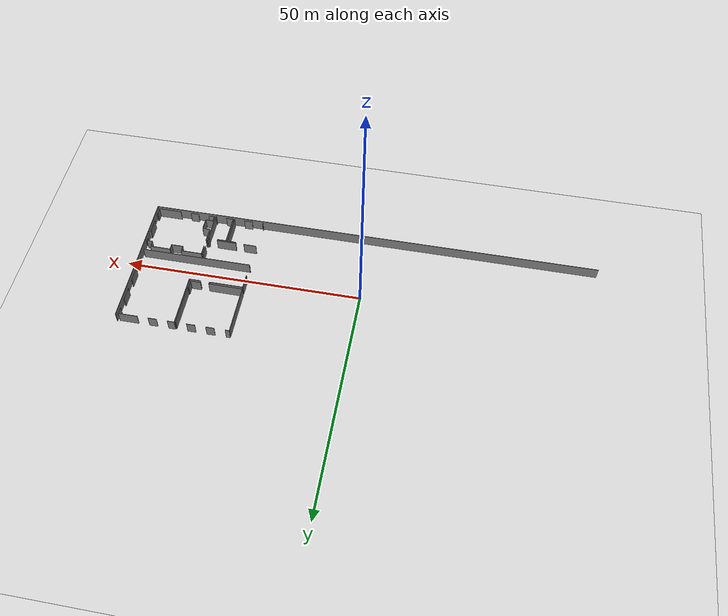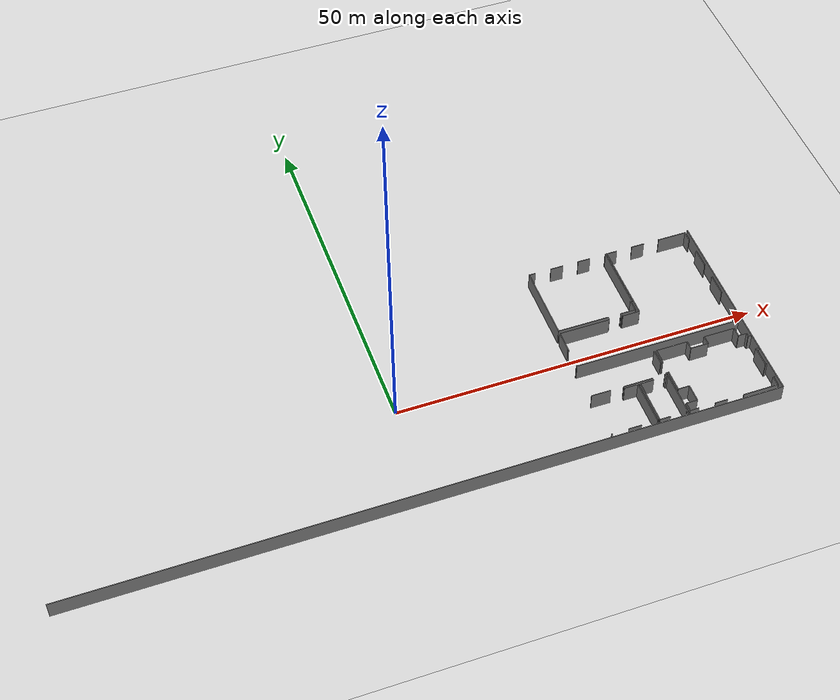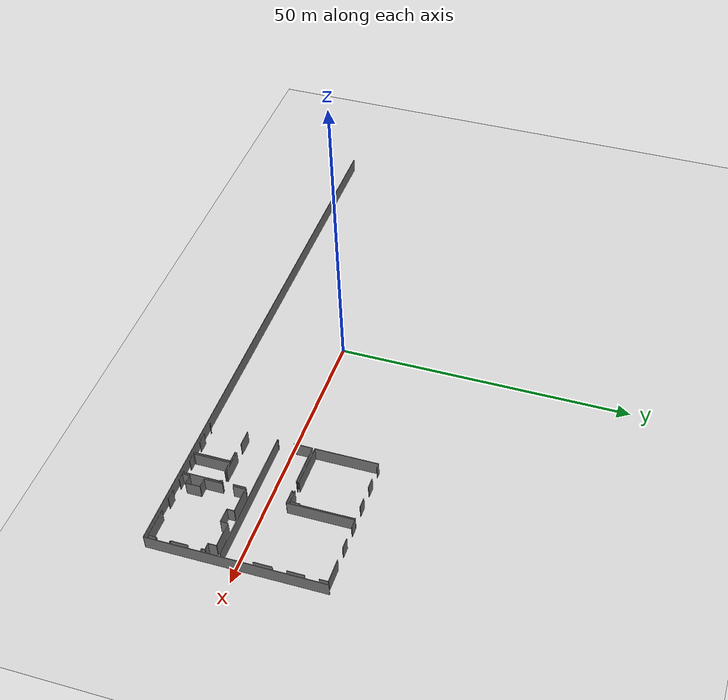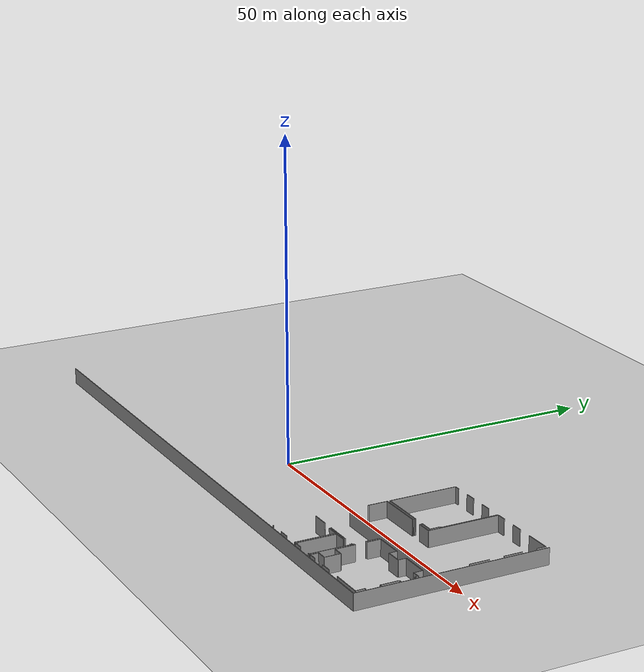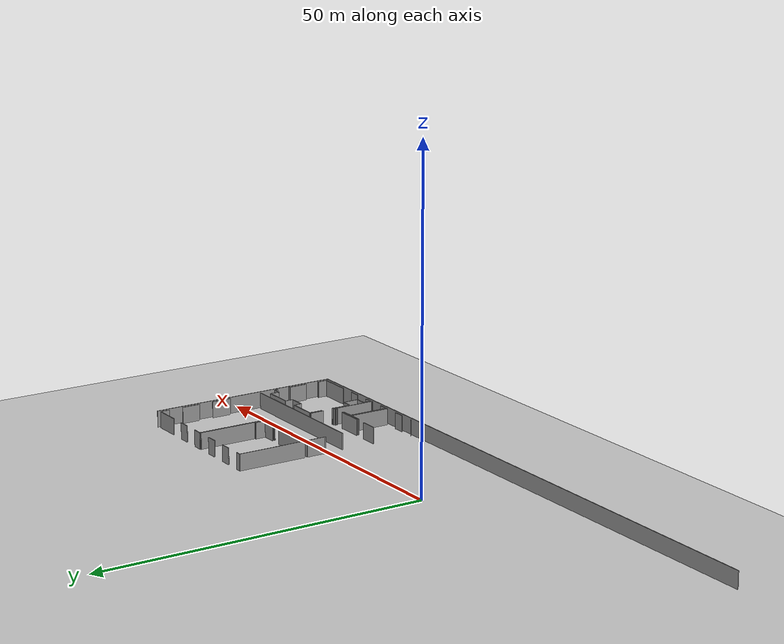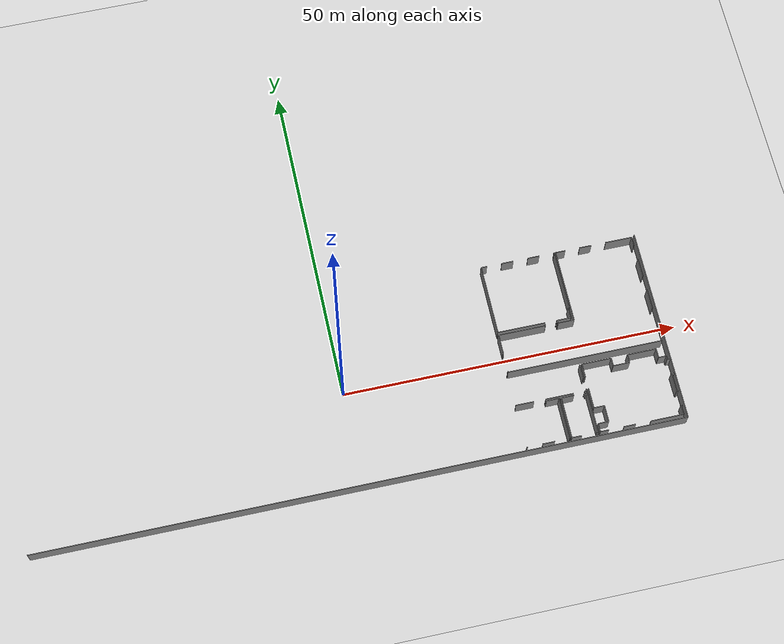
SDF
<sdf version="1.6">
 <world name="default">
  <model name="ground_plane">
   <static>1</static>
   <link name="link">
    <collision name="collision">
     <geometry><plane><normal>0 0 1</normal><size>100 100</size></plane></geometry>
     <surface><friction><ode><mu>100</mu><mu2>50</mu2></ode></friction></surface>
    </collision>
    <visual name="visual">
     <cast_shadows>0</cast_shadows>
     <geometry><plane><normal>0 0 1</normal><size>100 100</size></plane></geometry>
     <material>
      <script><uri>file://media/materials/scripts/gazebo.material</uri><name>Gazebo/Grey</name></script>
     </material>
    </visual>
   </link>
  </model>
  <model name="0510032268_A_40_1_102">
   <static>1</static>
   <link name="Wall_316">
    <collision name="Wall_316_Collision">
     <geometry><box><size>2.84959785693 0.1 2.5</size></box></geometry>
     <pose>1.42479892846 0 1.25 0 0 0</pose>
    </collision>
    <visual name="Wall_316_Visual">
     <pose>1.42479892846 0 1.25 0 0 0</pose>
     <geometry><box><size>2.84959785693 0.1 2.5</size></box></geometry>
     <material>
      <script><uri>file://media/materials/scripts/gazebo.material</uri><name>Gazebo/Grey</name></script>
      <ambient>1 1 1 1</ambient>
     </material>
    </visual>
    <pose>71.8861684367 -14.200506567 0 0 0 1.57079632679</pose>
   </link>
   <link name="Wall_317">
    <collision name="Wall_317_Collision">
     <geometry><box><size>7.0459782519 0.1 2.5</size></box></geometry>
     <pose>3.52298912595 0 1.25 0 0 0</pose>
    </collision>
    <visual name="Wall_317_Visual">
     <pose>3.52298912595 0 1.25 0 0 0</pose>
     <geometry><box><size>7.0459782519 0.1 2.5</size></box></geometry>
     <material>
      <script><uri>file://media/materials/scripts/gazebo.material</uri><name>Gazebo/Grey</name></script>
      <ambient>1 1 1 1</ambient>
     </material>
    </visual>
    <pose>71.8861684367 -11.35090871 0 0 0 0.0</pose>
   </link>
   <link name="Wall_318">
    <collision name="Wall_318_Collision">
     <geometry><box><size>0.138385460639 0.1 2.5</size></box></geometry>
     <pose>0.0691927303197 0 1.25 0 0 0</pose>
    </collision>
    <visual name="Wall_318_Visual">
     <pose>0.0691927303197 0 1.25 0 0 0</pose>
     <geometry><box><size>0.138385460639 0.1 2.5</size></box></geometry>
     <material>
      <script><uri>file://media/materials/scripts/gazebo.material</uri><name>Gazebo/Grey</name></script>
      <ambient>1 1 1 1</ambient>
     </material>
    </visual>
    <pose>78.9321466886 -11.35090871 0 0 0 1.57079632679</pose>
   </link>
   <link name="Wall_319">
    <collision name="Wall_319_Collision">
     <geometry><box><size>0.109819654544 0.1 2.5</size></box></geometry>
     <pose>0.0549098272721 0 1.25 0 0 0</pose>
    </collision>
    <visual name="Wall_319_Visual">
     <pose>0.0549098272721 0 1.25 0 0 0</pose>
     <geometry><box><size>0.109819654544 0.1 2.5</size></box></geometry>
     <material>
      <script><uri>file://media/materials/scripts/gazebo.material</uri><name>Gazebo/Grey</name></script>
      <ambient>1 1 1 1</ambient>
     </material>
    </visual>
    <pose>78.9321466886 -11.2125232494 0 0 0 0.0</pose>
   </link>
   <link name="Wall_320">
    <collision name="Wall_320_Collision">
     <geometry><box><size>0.0870939688061 0.1 2.5</size></box></geometry>
     <pose>0.0435469844031 0 1.25 0 0 0</pose>
    </collision>
    <visual name="Wall_320_Visual">
     <pose>0.0435469844031 0 1.25 0 0 0</pose>
     <geometry><box><size>0.0870939688061 0.1 2.5</size></box></geometry>
     <material>
      <script><uri>file://media/materials/scripts/gazebo.material</uri><name>Gazebo/Grey</name></script>
      <ambient>1 1 1 1</ambient>
     </material>
    </visual>
    <pose>80.8027626308 -11.2125232494 0 0 0 0.0</pose>
   </link>
   <link name="Wall_321">
    <collision name="Wall_321_Collision">
     <geometry><box><size>0.133180135973 0.1 2.5</size></box></geometry>
     <pose>0.0665900679866 0 1.25 0 0 0</pose>
    </collision>
    <visual name="Wall_321_Visual">
     <pose>0.0665900679866 0 1.25 0 0 0</pose>
     <geometry><box><size>0.133180135973 0.1 2.5</size></box></geometry>
     <material>
      <script><uri>file://media/materials/scripts/gazebo.material</uri><name>Gazebo/Grey</name></script>
      <ambient>1 1 1 1</ambient>
     </material>
    </visual>
    <pose>80.8898565997 -11.2125232494 0 0 0 -1.57079632679</pose>
   </link>
   <link name="Wall_322">
    <collision name="Wall_322_Collision">
     <geometry><box><size>2.39038665406 0.1 2.5</size></box></geometry>
     <pose>1.19519332703 0 1.25 0 0 0</pose>
    </collision>
    <visual name="Wall_322_Visual">
     <pose>1.19519332703 0 1.25 0 0 0</pose>
     <geometry><box><size>2.39038665406 0.1 2.5</size></box></geometry>
     <material>
      <script><uri>file://media/materials/scripts/gazebo.material</uri><name>Gazebo/Grey</name></script>
      <ambient>1 1 1 1</ambient>
     </material>
    </visual>
    <pose>80.8898565997 -11.3457033854 0 0 0 0.0</pose>
   </link>
   <link name="Wall_323">
    <collision name="Wall_323_Collision">
     <geometry><box><size>11.0614418749 0.1 2.5</size></box></geometry>
     <pose>5.53072093747 0 1.25 0 0 0</pose>
    </collision>
    <visual name="Wall_323_Visual">
     <pose>5.53072093747 0 1.25 0 0 0</pose>
     <geometry><box><size>11.0614418749 0.1 2.5</size></box></geometry>
     <material>
      <script><uri>file://media/materials/scripts/gazebo.material</uri><name>Gazebo/Grey</name></script>
      <ambient>1 1 1 1</ambient>
     </material>
    </visual>
    <pose>83.2802432537 -11.3457033854 0 0 0 1.57079632679</pose>
   </link>
   <link name="Wall_324">
    <collision name="Wall_324_Collision">
     <geometry><box><size>1.47767740953 0.1 2.5</size></box></geometry>
     <pose>0.738838704763 0 1.25 0 0 0</pose>
    </collision>
    <visual name="Wall_324_Visual">
     <pose>0.738838704763 0 1.25 0 0 0</pose>
     <geometry><box><size>1.47767740953 0.1 2.5</size></box></geometry>
     <material>
      <script><uri>file://media/materials/scripts/gazebo.material</uri><name>Gazebo/Grey</name></script>
      <ambient>1 1 1 1</ambient>
     </material>
    </visual>
    <pose>83.2802432537 -0.284261510433 0 0 0 0.0</pose>
   </link>
   <link name="Wall_325">
    <collision name="Wall_325_Collision">
     <geometry><box><size>1.78555331966 0.1 2.5</size></box></geometry>
     <pose>0.892776659832 0 1.25 0 0 0</pose>
    </collision>
    <visual name="Wall_325_Visual">
     <pose>0.892776659832 0 1.25 0 0 0</pose>
     <geometry><box><size>1.78555331966 0.1 2.5</size></box></geometry>
     <material>
      <script><uri>file://media/materials/scripts/gazebo.material</uri><name>Gazebo/Grey</name></script>
      <ambient>1 1 1 1</ambient>
     </material>
    </visual>
    <pose>86.9946867601 -0.284261510433 0 0 0 0.0</pose>
   </link>
   <link name="Wall_326">
    <collision name="Wall_326_Collision">
     <geometry><box><size>3.99019875453 0.1 2.5</size></box></geometry>
     <pose>1.99509937727 0 1.25 0 0 0</pose>
    </collision>
    <visual name="Wall_326_Visual">
     <pose>1.99509937727 0 1.25 0 0 0</pose>
     <geometry><box><size>3.99019875453 0.1 2.5</size></box></geometry>
     <material>
      <script><uri>file://media/materials/scripts/gazebo.material</uri><name>Gazebo/Grey</name></script>
      <ambient>1 1 1 1</ambient>
     </material>
    </visual>
    <pose>91.0166252991 -0.284261510433 0 0 0 0.0</pose>
   </link>
   <link name="Wall_327">
    <collision name="Wall_327_Collision">
     <geometry><box><size>1.41597526836 0.1 2.5</size></box></geometry>
     <pose>0.70798763418 0 1.25 0 0 0</pose>
    </collision>
    <visual name="Wall_327_Visual">
     <pose>0.70798763418 0 1.25 0 0 0</pose>
     <geometry><box><size>1.41597526836 0.1 2.5</size></box></geometry>
     <material>
      <script><uri>file://media/materials/scripts/gazebo.material</uri><name>Gazebo/Grey</name></script>
      <ambient>1 1 1 1</ambient>
     </material>
    </visual>
    <pose>95.0068240537 -0.284261510433 0 0 0 -1.57079632679</pose>
   </link>
   <link name="Wall_328">
    <collision name="Wall_328_Collision">
     <geometry><box><size>2.81519193048 0.1 2.5</size></box></geometry>
     <pose>1.40759596524 0 1.25 0 0 0</pose>
    </collision>
    <visual name="Wall_328_Visual">
     <pose>1.40759596524 0 1.25 0 0 0</pose>
     <geometry><box><size>2.81519193048 0.1 2.5</size></box></geometry>
     <material>
      <script><uri>file://media/materials/scripts/gazebo.material</uri><name>Gazebo/Grey</name></script>
      <ambient>1 1 1 1</ambient>
     </material>
    </visual>
    <pose>95.0068240537 -3.93700287562 0 0 0 -1.57079632679</pose>
   </link>
   <link name="Wall_329">
    <collision name="Wall_329_Collision">
     <geometry><box><size>3.05146288667 0.1 2.5</size></box></geometry>
     <pose>1.52573144333 0 1.25 0 0 0</pose>
    </collision>
    <visual name="Wall_329_Visual">
     <pose>1.52573144333 0 1.25 0 0 0</pose>
     <geometry><box><size>3.05146288667 0.1 2.5</size></box></geometry>
     <material>
      <script><uri>file://media/materials/scripts/gazebo.material</uri><name>Gazebo/Grey</name></script>
      <ambient>1 1 1 1</ambient>
     </material>
    </visual>
    <pose>95.0068240537 -8.99175400397 0 0 0 -1.57079632679</pose>
   </link>
   <link name="Wall_330">
    <collision name="Wall_330_Collision">
     <geometry><box><size>23.128907961 0.1 2.5</size></box></geometry>
     <pose>11.5644539805 0 1.25 0 0 0</pose>
    </collision>
    <visual name="Wall_330_Visual">
     <pose>11.5644539805 0 1.25 0 0 0</pose>
     <geometry><box><size>23.128907961 0.1 2.5</size></box></geometry>
     <material>
      <script><uri>file://media/materials/scripts/gazebo.material</uri><name>Gazebo/Grey</name></script>
      <ambient>1 1 1 1</ambient>
     </material>
    </visual>
    <pose>95.0068240537 -17.2631418578 0 0 0 3.14159265359</pose>
   </link>
   <link name="Wall_331">
    <collision name="Wall_331_Collision">
     <geometry><box><size>0.141813357371 0.1 2.5</size></box></geometry>
     <pose>0.0709066786855 0 1.25 0 0 0</pose>
    </collision>
    <visual name="Wall_331_Visual">
     <pose>0.0709066786855 0 1.25 0 0 0</pose>
     <geometry><box><size>0.141813357371 0.1 2.5</size></box></geometry>
     <material>
      <script><uri>file://media/materials/scripts/gazebo.material</uri><name>Gazebo/Grey</name></script>
      <ambient>1 1 1 1</ambient>
     </material>
    </visual>
    <pose>71.8779160927 -17.2631418578 0 0 0 1.57079632679</pose>
   </link>
   <link name="Wall_332">
    <collision name="Wall_332_Collision">
     <geometry><box><size>0.24986493801 0.1 2.5</size></box></geometry>
     <pose>0.124932469005 0 1.25 0 0 0</pose>
    </collision>
    <visual name="Wall_332_Visual">
     <pose>0.124932469005 0 1.25 0 0 0</pose>
     <geometry><box><size>0.24986493801 0.1 2.5</size></box></geometry>
     <material>
      <script><uri>file://media/materials/scripts/gazebo.material</uri><name>Gazebo/Grey</name></script>
      <ambient>1 1 1 1</ambient>
     </material>
    </visual>
    <pose>71.8779160927 -14.4502351918 0 0 0 1.53776310069</pose>
   </link>
   <link name="Wall_363">
    <collision name="Wall_363_Collision">
     <geometry><box><size>2.10879128552 0.1 2.5</size></box></geometry>
     <pose>1.05439564276 0 1.25 0 0 0</pose>
    </collision>
    <visual name="Wall_363_Visual">
     <pose>1.05439564276 0 1.25 0 0 0</pose>
     <geometry><box><size>2.10879128552 0.1 2.5</size></box></geometry>
     <material>
      <script><uri>file://media/materials/scripts/gazebo.material</uri><name>Gazebo/Grey</name></script>
      <ambient>1 1 1 1</ambient>
     </material>
    </visual>
    <pose>82.3290653903 -18.355625242 0 0 0 -1.57079632679</pose>
   </link>
   <link name="Wall_364">
    <collision name="Wall_364_Collision">
     <geometry><box><size>0.258869682793 0.1 2.5</size></box></geometry>
     <pose>0.129434841396 0 1.25 0 0 0</pose>
    </collision>
    <visual name="Wall_364_Visual">
     <pose>0.129434841396 0 1.25 0 0 0</pose>
     <geometry><box><size>0.258869682793 0.1 2.5</size></box></geometry>
     <material>
      <script><uri>file://media/materials/scripts/gazebo.material</uri><name>Gazebo/Grey</name></script>
      <ambient>1 1 1 1</ambient>
     </material>
    </visual>
    <pose>82.3290653903 -22.2050263123 0 0 0 -1.57079632679</pose>
   </link>
   <link name="Wall_365">
    <collision name="Wall_365_Collision">
     <geometry><box><size>0.328062413112 0.1 2.5</size></box></geometry>
     <pose>0.164031206556 0 1.25 0 0 0</pose>
    </collision>
    <visual name="Wall_365_Visual">
     <pose>0.164031206556 0 1.25 0 0 0</pose>
     <geometry><box><size>0.328062413112 0.1 2.5</size></box></geometry>
     <material>
      <script><uri>file://media/materials/scripts/gazebo.material</uri><name>Gazebo/Grey</name></script>
      <ambient>1 1 1 1</ambient>
     </material>
    </visual>
    <pose>82.3290653903 -22.4638959951 0 0 0 3.14159265359</pose>
   </link>
   <link name="Wall_366">
    <collision name="Wall_366_Collision">
     <geometry><box><size>4.09024255543 0.1 2.5</size></box></geometry>
     <pose>2.04512127772 0 1.25 0 0 0</pose>
    </collision>
    <visual name="Wall_366_Visual">
     <pose>2.04512127772 0 1.25 0 0 0</pose>
     <geometry><box><size>4.09024255543 0.1 2.5</size></box></geometry>
     <material>
      <script><uri>file://media/materials/scripts/gazebo.material</uri><name>Gazebo/Grey</name></script>
      <ambient>1 1 1 1</ambient>
     </material>
    </visual>
    <pose>80.287562448 -22.4638959951 0 0 0 3.14159265359</pose>
   </link>
   <link name="Wall_367">
    <collision name="Wall_367_Collision">
     <geometry><box><size>2.68271876606 0.1 2.5</size></box></geometry>
     <pose>1.34135938303 0 1.25 0 0 0</pose>
    </collision>
    <visual name="Wall_367_Visual">
     <pose>1.34135938303 0 1.25 0 0 0</pose>
     <geometry><box><size>2.68271876606 0.1 2.5</size></box></geometry>
     <material>
      <script><uri>file://media/materials/scripts/gazebo.material</uri><name>Gazebo/Grey</name></script>
      <ambient>1 1 1 1</ambient>
     </material>
    </visual>
    <pose>74.4424906844 -22.4638959951 0 0 0 3.13425724328</pose>
   </link>
   <link name="Wall_370">
    <collision name="Wall_370_Collision">
     <geometry><box><size>1.88102659159 0.1 2.5</size></box></geometry>
     <pose>0.940513295796 0 1.25 0 0 0</pose>
    </collision>
    <visual name="Wall_370_Visual">
     <pose>0.940513295796 0 1.25 0 0 0</pose>
     <geometry><box><size>1.88102659159 0.1 2.5</size></box></geometry>
     <material>
      <script><uri>file://media/materials/scripts/gazebo.material</uri><name>Gazebo/Grey</name></script>
      <ambient>1 1 1 1</ambient>
     </material>
    </visual>
    <pose>76.2288057589 -22.7282249208 0 0 0 0.0</pose>
   </link>
   <link name="Wall_371">
    <collision name="Wall_371_Collision">
     <geometry><box><size>6.22506046429 0.1 2.5</size></box></geometry>
     <pose>3.11253023214 0 1.25 0 0 0</pose>
    </collision>
    <visual name="Wall_371_Visual">
     <pose>3.11253023214 0 1.25 0 0 0</pose>
     <geometry><box><size>6.22506046429 0.1 2.5</size></box></geometry>
     <material>
      <script><uri>file://media/materials/scripts/gazebo.material</uri><name>Gazebo/Grey</name></script>
      <ambient>1 1 1 1</ambient>
     </material>
    </visual>
    <pose>78.1098323505 -22.7282249208 0 0 0 -1.57079632679</pose>
   </link>
   <link name="Wall_372">
    <collision name="Wall_372_Collision">
     <geometry><box><size>1.75647967702 0.1 2.5</size></box></geometry>
     <pose>0.878239838508 0 1.25 0 0 0</pose>
    </collision>
    <visual name="Wall_372_Visual">
     <pose>0.878239838508 0 1.25 0 0 0</pose>
     <geometry><box><size>1.75647967702 0.1 2.5</size></box></geometry>
     <material>
      <script><uri>file://media/materials/scripts/gazebo.material</uri><name>Gazebo/Grey</name></script>
      <ambient>1 1 1 1</ambient>
     </material>
    </visual>
    <pose>75.8918562061 -28.9532853851 0 0 0 3.14159265359</pose>
   </link>
   <link name="Wall_373">
    <collision name="Wall_373_Collision">
     <geometry><box><size>0.135338441323 0.1 2.5</size></box></geometry>
     <pose>0.0676692206613 0 1.25 0 0 0</pose>
    </collision>
    <visual name="Wall_373_Visual">
     <pose>0.0676692206613 0 1.25 0 0 0</pose>
     <geometry><box><size>0.135338441323 0.1 2.5</size></box></geometry>
     <material>
      <script><uri>file://media/materials/scripts/gazebo.material</uri><name>Gazebo/Grey</name></script>
      <ambient>1 1 1 1</ambient>
     </material>
    </visual>
    <pose>71.8921355162 -28.9532853851 0 0 0 3.14159265359</pose>
   </link>
   <link name="Wall_375">
    <collision name="Wall_375_Collision">
     <geometry><box><size>5.95501837734 0.1 2.5</size></box></geometry>
     <pose>2.97750918867 0 1.25 0 0 0</pose>
    </collision>
    <visual name="Wall_375_Visual">
     <pose>2.97750918867 0 1.25 0 0 0</pose>
     <geometry><box><size>5.95501837734 0.1 2.5</size></box></geometry>
     <material>
      <script><uri>file://media/materials/scripts/gazebo.material</uri><name>Gazebo/Grey</name></script>
      <ambient>1 1 1 1</ambient>
     </material>
    </visual>
    <pose>78.4198665659 -28.699621027 0 0 0 1.57079632679</pose>
   </link>
   <link name="Wall_376">
    <collision name="Wall_376_Collision">
     <geometry><box><size>1.89715040214 0.1 2.5</size></box></geometry>
     <pose>0.948575201072 0 1.25 0 0 0</pose>
    </collision>
    <visual name="Wall_376_Visual">
     <pose>0.948575201072 0 1.25 0 0 0</pose>
     <geometry><box><size>1.89715040214 0.1 2.5</size></box></geometry>
     <material>
      <script><uri>file://media/materials/scripts/gazebo.material</uri><name>Gazebo/Grey</name></script>
      <ambient>1 1 1 1</ambient>
     </material>
    </visual>
    <pose>78.4198665659 -22.7446026496 0 0 0 0.0</pose>
   </link>
   <link name="Wall_377">
    <collision name="Wall_377_Collision">
     <geometry><box><size>0.241730199135 0.1 2.5</size></box></geometry>
     <pose>0.120865099568 0 1.25 0 0 0</pose>
    </collision>
    <visual name="Wall_377_Visual">
     <pose>0.120865099568 0 1.25 0 0 0</pose>
     <geometry><box><size>0.241730199135 0.1 2.5</size></box></geometry>
     <material>
      <script><uri>file://media/materials/scripts/gazebo.material</uri><name>Gazebo/Grey</name></script>
      <ambient>1 1 1 1</ambient>
     </material>
    </visual>
    <pose>82.0882239051 -22.7446026496 0 0 0 0.0</pose>
   </link>
   <link name="Wall_378">
    <collision name="Wall_378_Collision">
     <geometry><box><size>6.18265611213 0.1 2.5</size></box></geometry>
     <pose>3.09132805607 0 1.25 0 0 0</pose>
    </collision>
    <visual name="Wall_378_Visual">
     <pose>3.09132805607 0 1.25 0 0 0</pose>
     <geometry><box><size>6.18265611213 0.1 2.5</size></box></geometry>
     <material>
      <script><uri>file://media/materials/scripts/gazebo.material</uri><name>Gazebo/Grey</name></script>
      <ambient>1 1 1 1</ambient>
     </material>
    </visual>
    <pose>82.3299541043 -22.7446026496 0 0 0 -1.57079632679</pose>
   </link>
   <link name="Wall_379">
    <collision name="Wall_379_Collision">
     <geometry><box><size>0.221162818747 0.1 2.5</size></box></geometry>
     <pose>0.110581409373 0 1.25 0 0 0</pose>
    </collision>
    <visual name="Wall_379_Visual">
     <pose>0.110581409373 0 1.25 0 0 0</pose>
     <geometry><box><size>0.221162818747 0.1 2.5</size></box></geometry>
     <material>
      <script><uri>file://media/materials/scripts/gazebo.material</uri><name>Gazebo/Grey</name></script>
      <ambient>1 1 1 1</ambient>
     </material>
    </visual>
    <pose>82.3299541043 -28.9272587618 0 0 0 3.14159265359</pose>
   </link>
   <link name="Wall_380">
    <collision name="Wall_380_Collision">
     <geometry><box><size>1.47640781814 0.1 2.5</size></box></geometry>
     <pose>0.738203909072 0 1.25 0 0 0</pose>
    </collision>
    <visual name="Wall_380_Visual">
     <pose>0.738203909072 0 1.25 0 0 0</pose>
     <geometry><box><size>1.47640781814 0.1 2.5</size></box></geometry>
     <material>
      <script><uri>file://media/materials/scripts/gazebo.material</uri><name>Gazebo/Grey</name></script>
      <ambient>1 1 1 1</ambient>
     </material>
    </visual>
    <pose>79.8857367756 -28.9272587618 0 0 0 3.14159265359</pose>
   </link>
   <link name="Wall_381">
    <collision name="Wall_381_Collision">
     <geometry><box><size>0.227881503187 0.1 2.5</size></box></geometry>
     <pose>0.113940751594 0 1.25 0 0 0</pose>
    </collision>
    <visual name="Wall_381_Visual">
     <pose>0.113940751594 0 1.25 0 0 0</pose>
     <geometry><box><size>0.227881503187 0.1 2.5</size></box></geometry>
     <material>
      <script><uri>file://media/materials/scripts/gazebo.material</uri><name>Gazebo/Grey</name></script>
      <ambient>1 1 1 1</ambient>
     </material>
    </visual>
    <pose>78.4093289575 -28.9272587618 0 0 0 1.52453821744</pose>
   </link>
   <link name="Wall_382">
    <collision name="Wall_382_Collision">
     <geometry><box><size>1.24140645333 0.1 2.5</size></box></geometry>
     <pose>0.620703226666 0 1.25 0 0 0</pose>
    </collision>
    <visual name="Wall_382_Visual">
     <pose>0.620703226666 0 1.25 0 0 0</pose>
     <geometry><box><size>1.24140645333 0.1 2.5</size></box></geometry>
     <material>
      <script><uri>file://media/materials/scripts/gazebo.material</uri><name>Gazebo/Grey</name></script>
      <ambient>1 1 1 1</ambient>
     </material>
    </visual>
    <pose>82.6295776704 -28.9073261771 0 0 0 1.57079632679</pose>
   </link>
   <link name="Wall_383">
    <collision name="Wall_383_Collision">
     <geometry><box><size>1.57708641474 0.1 2.5</size></box></geometry>
     <pose>0.788543207369 0 1.25 0 0 0</pose>
    </collision>
    <visual name="Wall_383_Visual">
     <pose>0.788543207369 0 1.25 0 0 0</pose>
     <geometry><box><size>1.57708641474 0.1 2.5</size></box></geometry>
     <material>
      <script><uri>file://media/materials/scripts/gazebo.material</uri><name>Gazebo/Grey</name></script>
      <ambient>1 1 1 1</ambient>
     </material>
    </visual>
    <pose>82.6295776704 -27.6659197237 0 0 0 0.0</pose>
   </link>
   <link name="Wall_384">
    <collision name="Wall_384_Collision">
     <geometry><box><size>2.44358253296 0.1 2.5</size></box></geometry>
     <pose>1.22179126648 0 1.25 0 0 0</pose>
    </collision>
    <visual name="Wall_384_Visual">
     <pose>1.22179126648 0 1.25 0 0 0</pose>
     <geometry><box><size>2.44358253296 0.1 2.5</size></box></geometry>
     <material>
      <script><uri>file://media/materials/scripts/gazebo.material</uri><name>Gazebo/Grey</name></script>
      <ambient>1 1 1 1</ambient>
     </material>
    </visual>
    <pose>84.2066640852 -27.6659197237 0 0 0 1.57079632679</pose>
   </link>
   <link name="Wall_385">
    <collision name="Wall_385_Collision">
     <geometry><box><size>1.5709923761 0.1 2.5</size></box></geometry>
     <pose>0.785496188052 0 1.25 0 0 0</pose>
    </collision>
    <visual name="Wall_385_Visual">
     <pose>0.785496188052 0 1.25 0 0 0</pose>
     <geometry><box><size>1.5709923761 0.1 2.5</size></box></geometry>
     <material>
      <script><uri>file://media/materials/scripts/gazebo.material</uri><name>Gazebo/Grey</name></script>
      <ambient>1 1 1 1</ambient>
     </material>
    </visual>
    <pose>84.2066640852 -25.2223371908 0 0 0 3.14159265359</pose>
   </link>
   <link name="Wall_386">
    <collision name="Wall_386_Collision">
     <geometry><box><size>3.05590645651 0.1 2.5</size></box></geometry>
     <pose>1.52795322825 0 1.25 0 0 0</pose>
    </collision>
    <visual name="Wall_386_Visual">
     <pose>1.52795322825 0 1.25 0 0 0</pose>
     <geometry><box><size>3.05590645651 0.1 2.5</size></box></geometry>
     <material>
      <script><uri>file://media/materials/scripts/gazebo.material</uri><name>Gazebo/Grey</name></script>
      <ambient>1 1 1 1</ambient>
     </material>
    </visual>
    <pose>82.6356717091 -25.2223371908 0 0 0 1.57079632679</pose>
   </link>
   <link name="Wall_387">
    <collision name="Wall_387_Collision">
     <geometry><box><size>2.06397470974 0.1 2.5</size></box></geometry>
     <pose>1.03198735487 0 1.25 0 0 0</pose>
    </collision>
    <visual name="Wall_387_Visual">
     <pose>1.03198735487 0 1.25 0 0 0</pose>
     <geometry><box><size>2.06397470974 0.1 2.5</size></box></geometry>
     <material>
      <script><uri>file://media/materials/scripts/gazebo.material</uri><name>Gazebo/Grey</name></script>
      <ambient>1 1 1 1</ambient>
     </material>
    </visual>
    <pose>82.6356717091 -20.411601526 0 0 0 1.57079632679</pose>
   </link>
   <link name="Wall_388">
    <collision name="Wall_388_Collision">
     <geometry><box><size>4.405862973 0.1 2.5</size></box></geometry>
     <pose>2.2029314865 0 1.25 0 0 0</pose>
    </collision>
    <visual name="Wall_388_Visual">
     <pose>2.2029314865 0 1.25 0 0 0</pose>
     <geometry><box><size>4.405862973 0.1 2.5</size></box></geometry>
     <material>
      <script><uri>file://media/materials/scripts/gazebo.material</uri><name>Gazebo/Grey</name></script>
      <ambient>1 1 1 1</ambient>
     </material>
    </visual>
    <pose>82.6356717091 -18.3476268163 0 0 0 0.0</pose>
   </link>
   <link name="Wall_389">
    <collision name="Wall_389_Collision">
     <geometry><box><size>1.20560397636 0.1 2.5</size></box></geometry>
     <pose>0.60280198818 0 1.25 0 0 0</pose>
    </collision>
    <visual name="Wall_389_Visual">
     <pose>0.60280198818 0 1.25 0 0 0</pose>
     <geometry><box><size>1.20560397636 0.1 2.5</size></box></geometry>
     <material>
      <script><uri>file://media/materials/scripts/gazebo.material</uri><name>Gazebo/Grey</name></script>
      <ambient>1 1 1 1</ambient>
     </material>
    </visual>
    <pose>87.0415346821 -18.3476268163 0 0 0 -1.57079632679</pose>
   </link>
   <link name="Wall_390">
    <collision name="Wall_390_Collision">
     <geometry><box><size>2.45538973281 0.1 2.5</size></box></geometry>
     <pose>1.22769486641 0 1.25 0 0 0</pose>
    </collision>
    <visual name="Wall_390_Visual">
     <pose>1.22769486641 0 1.25 0 0 0</pose>
     <geometry><box><size>2.45538973281 0.1 2.5</size></box></geometry>
     <material>
      <script><uri>file://media/materials/scripts/gazebo.material</uri><name>Gazebo/Grey</name></script>
      <ambient>1 1 1 1</ambient>
     </material>
    </visual>
    <pose>87.0415346821 -19.5532307927 0 0 0 0.0</pose>
   </link>
   <link name="Wall_391">
    <collision name="Wall_391_Collision">
     <geometry><box><size>1.21829989018 0.1 2.5</size></box></geometry>
     <pose>0.60914994509 0 1.25 0 0 0</pose>
    </collision>
    <visual name="Wall_391_Visual">
     <pose>0.60914994509 0 1.25 0 0 0</pose>
     <geometry><box><size>1.21829989018 0.1 2.5</size></box></geometry>
     <material>
      <script><uri>file://media/materials/scripts/gazebo.material</uri><name>Gazebo/Grey</name></script>
      <ambient>1 1 1 1</ambient>
     </material>
    </visual>
    <pose>89.4969244149 -19.5532307927 0 0 0 1.57079632679</pose>
   </link>
   <link name="Wall_392">
    <collision name="Wall_392_Collision">
     <geometry><box><size>4.31940379989 0.1 2.5</size></box></geometry>
     <pose>2.15970189994 0 1.25 0 0 0</pose>
    </collision>
    <visual name="Wall_392_Visual">
     <pose>2.15970189994 0 1.25 0 0 0</pose>
     <geometry><box><size>4.31940379989 0.1 2.5</size></box></geometry>
     <material>
      <script><uri>file://media/materials/scripts/gazebo.material</uri><name>Gazebo/Grey</name></script>
      <ambient>1 1 1 1</ambient>
     </material>
    </visual>
    <pose>89.4969244149 -18.3349309025 0 0 0 0.0</pose>
   </link>
   <link name="Wall_393">
    <collision name="Wall_393_Collision">
     <geometry><box><size>1.37661793552 0.1 2.5</size></box></geometry>
     <pose>0.688308967759 0 1.25 0 0 0</pose>
    </collision>
    <visual name="Wall_393_Visual">
     <pose>0.688308967759 0 1.25 0 0 0</pose>
     <geometry><box><size>1.37661793552 0.1 2.5</size></box></geometry>
     <material>
      <script><uri>file://media/materials/scripts/gazebo.material</uri><name>Gazebo/Grey</name></script>
      <ambient>1 1 1 1</ambient>
     </material>
    </visual>
    <pose>93.8163282148 -18.3349309025 0 0 0 -1.57079632679</pose>
   </link>
   <link name="Wall_394">
    <collision name="Wall_394_Collision">
     <geometry><box><size>1.15812125867 0.1 2.5</size></box></geometry>
     <pose>0.579060629336 0 1.25 0 0 0</pose>
    </collision>
    <visual name="Wall_394_Visual">
     <pose>0.579060629336 0 1.25 0 0 0</pose>
     <geometry><box><size>1.15812125867 0.1 2.5</size></box></geometry>
     <material>
      <script><uri>file://media/materials/scripts/gazebo.material</uri><name>Gazebo/Grey</name></script>
      <ambient>1 1 1 1</ambient>
     </material>
    </visual>
    <pose>93.8163282148 -19.711548838 0 0 0 0.0</pose>
   </link>
   <link name="Wall_395">
    <collision name="Wall_395_Collision">
     <geometry><box><size>0.536021481486 0.1 2.5</size></box></geometry>
     <pose>0.268010740743 0 1.25 0 0 0</pose>
    </collision>
    <visual name="Wall_395_Visual">
     <pose>0.268010740743 0 1.25 0 0 0</pose>
     <geometry><box><size>0.536021481486 0.1 2.5</size></box></geometry>
     <material>
      <script><uri>file://media/materials/scripts/gazebo.material</uri><name>Gazebo/Grey</name></script>
      <ambient>1 1 1 1</ambient>
     </material>
    </visual>
    <pose>94.9744494734 -19.711548838 0 0 0 -1.57079632679</pose>
   </link>
   <link name="Wall_396">
    <collision name="Wall_396_Collision">
     <geometry><box><size>0.529038728885 0.1 2.5</size></box></geometry>
     <pose>0.264519364443 0 1.25 0 0 0</pose>
    </collision>
    <visual name="Wall_396_Visual">
     <pose>0.264519364443 0 1.25 0 0 0</pose>
     <geometry><box><size>0.529038728885 0.1 2.5</size></box></geometry>
     <material>
      <script><uri>file://media/materials/scripts/gazebo.material</uri><name>Gazebo/Grey</name></script>
      <ambient>1 1 1 1</ambient>
     </material>
    </visual>
    <pose>94.9744494734 -20.2475703195 0 0 0 0.0</pose>
   </link>
   <link name="Wall_397">
    <collision name="Wall_397_Collision">
     <geometry><box><size>0.501107718481 0.1 2.5</size></box></geometry>
     <pose>0.25055385924 0 1.25 0 0 0</pose>
    </collision>
    <visual name="Wall_397_Visual">
     <pose>0.25055385924 0 1.25 0 0 0</pose>
     <geometry><box><size>0.501107718481 0.1 2.5</size></box></geometry>
     <material>
      <script><uri>file://media/materials/scripts/gazebo.material</uri><name>Gazebo/Grey</name></script>
      <ambient>1 1 1 1</ambient>
     </material>
    </visual>
    <pose>95.5034882023 -22.4525966318 0 0 0 3.14159265359</pose>
   </link>
   <link name="Wall_398">
    <collision name="Wall_398_Collision">
     <geometry><box><size>2.84236118605 0.1 2.5</size></box></geometry>
     <pose>1.42118059303 0 1.25 0 0 0</pose>
    </collision>
    <visual name="Wall_398_Visual">
     <pose>1.42118059303 0 1.25 0 0 0</pose>
     <geometry><box><size>2.84236118605 0.1 2.5</size></box></geometry>
     <material>
      <script><uri>file://media/materials/scripts/gazebo.material</uri><name>Gazebo/Grey</name></script>
      <ambient>1 1 1 1</ambient>
     </material>
    </visual>
    <pose>95.0023804838 -22.4525966318 0 0 0 -1.57079632679</pose>
   </link>
   <link name="Wall_399">
    <collision name="Wall_399_Collision">
     <geometry><box><size>0.20186502974 0.1 2.5</size></box></geometry>
     <pose>0.10093251487 0 1.25 0 0 0</pose>
    </collision>
    <visual name="Wall_399_Visual">
     <pose>0.10093251487 0 1.25 0 0 0</pose>
     <geometry><box><size>0.20186502974 0.1 2.5</size></box></geometry>
     <material>
      <script><uri>file://media/materials/scripts/gazebo.material</uri><name>Gazebo/Grey</name></script>
      <ambient>1 1 1 1</ambient>
     </material>
    </visual>
    <pose>95.0023804838 -25.2949578178 0 0 0 0.0</pose>
   </link>
   <link name="Wall_400">
    <collision name="Wall_400_Collision">
     <geometry><box><size>0.197040582489 0.1 2.5</size></box></geometry>
     <pose>0.0985202912443 0 1.25 0 0 0</pose>
    </collision>
    <visual name="Wall_400_Visual">
     <pose>0.0985202912443 0 1.25 0 0 0</pose>
     <geometry><box><size>0.197040582489 0.1 2.5</size></box></geometry>
     <material>
      <script><uri>file://media/materials/scripts/gazebo.material</uri><name>Gazebo/Grey</name></script>
      <ambient>1 1 1 1</ambient>
     </material>
    </visual>
    <pose>95.2042455136 -27.5166157772 0 0 0 3.14159265359</pose>
   </link>
   <link name="Wall_401">
    <collision name="Wall_401_Collision">
     <geometry><box><size>1.38867905365 0.1 2.5</size></box></geometry>
     <pose>0.694339526823 0 1.25 0 0 0</pose>
    </collision>
    <visual name="Wall_401_Visual">
     <pose>0.694339526823 0 1.25 0 0 0</pose>
     <geometry><box><size>1.38867905365 0.1 2.5</size></box></geometry>
     <material>
      <script><uri>file://media/materials/scripts/gazebo.material</uri><name>Gazebo/Grey</name></script>
      <ambient>1 1 1 1</ambient>
     </material>
    </visual>
    <pose>95.0072049311 -27.5166157772 0 0 0 -1.57079632679</pose>
   </link>
   <link name="Wall_402">
    <collision name="Wall_402_Collision">
     <geometry><box><size>4.86837511347 0.1 2.5</size></box></geometry>
     <pose>2.43418755673 0 1.25 0 0 0</pose>
    </collision>
    <visual name="Wall_402_Visual">
     <pose>2.43418755673 0 1.25 0 0 0</pose>
     <geometry><box><size>4.86837511347 0.1 2.5</size></box></geometry>
     <material>
      <script><uri>file://media/materials/scripts/gazebo.material</uri><name>Gazebo/Grey</name></script>
      <ambient>1 1 1 1</ambient>
     </material>
    </visual>
    <pose>95.0072049311 -28.9052948309 0 0 0 3.14159265359</pose>
   </link>
   <link name="Wall_403">
    <collision name="Wall_403_Collision">
     <geometry><box><size>1.72956433972 0.1 2.5</size></box></geometry>
     <pose>0.864782169859 0 1.25 0 0 0</pose>
    </collision>
    <visual name="Wall_403_Visual">
     <pose>0.864782169859 0 1.25 0 0 0</pose>
     <geometry><box><size>1.72956433972 0.1 2.5</size></box></geometry>
     <material>
      <script><uri>file://media/materials/scripts/gazebo.material</uri><name>Gazebo/Grey</name></script>
      <ambient>1 1 1 1</ambient>
     </material>
    </visual>
    <pose>87.8620715923 -28.9052948309 0 0 0 3.14159265359</pose>
   </link>
   <link name="Wall_404">
    <collision name="Wall_404_Collision">
     <geometry><box><size>1.23061660313 0.1 2.5</size></box></geometry>
     <pose>0.615308301566 0 1.25 0 0 0</pose>
    </collision>
    <visual name="Wall_404_Visual">
     <pose>0.615308301566 0 1.25 0 0 0</pose>
     <geometry><box><size>1.23061660313 0.1 2.5</size></box></geometry>
     <material>
      <script><uri>file://media/materials/scripts/gazebo.material</uri><name>Gazebo/Grey</name></script>
      <ambient>1 1 1 1</ambient>
     </material>
    </visual>
    <pose>83.860192597 -28.9052948309 0 0 0 -3.13994197934</pose>
   </link>
   <link name="Wall_405">
    <collision name="Wall_405_Collision">
     <geometry><box><size>10.5991836527 0.1 2.5</size></box></geometry>
     <pose>5.29959182637 0 1.25 0 0 0</pose>
    </collision>
    <visual name="Wall_405_Visual">
     <pose>5.29959182637 0 1.25 0 0 0</pose>
     <geometry><box><size>10.5991836527 0.1 2.5</size></box></geometry>
     <material>
      <script><uri>file://media/materials/scripts/gazebo.material</uri><name>Gazebo/Grey</name></script>
      <ambient>1 1 1 1</ambient>
     </material>
    </visual>
    <pose>71.8918815979 -10.9104874596 0 0 0 1.57079632679</pose>
   </link>
   <link name="Wall_406">
    <collision name="Wall_406_Collision">
     <geometry><box><size>0.864210853737 0.1 2.5</size></box></geometry>
     <pose>0.432105426868 0 1.25 0 0 0</pose>
    </collision>
    <visual name="Wall_406_Visual">
     <pose>0.432105426868 0 1.25 0 0 0</pose>
     <geometry><box><size>0.864210853737 0.1 2.5</size></box></geometry>
     <material>
      <script><uri>file://media/materials/scripts/gazebo.material</uri><name>Gazebo/Grey</name></script>
      <ambient>1 1 1 1</ambient>
     </material>
    </visual>
    <pose>71.8918815979 -0.31130380687 0 0 0 0.0</pose>
   </link>
   <link name="Wall_407">
    <collision name="Wall_407_Collision">
     <geometry><box><size>1.76117716513 0.1 2.5</size></box></geometry>
     <pose>0.880588582565 0 1.25 0 0 0</pose>
    </collision>
    <visual name="Wall_407_Visual">
     <pose>0.880588582565 0 1.25 0 0 0</pose>
     <geometry><box><size>1.76117716513 0.1 2.5</size></box></geometry>
     <material>
      <script><uri>file://media/materials/scripts/gazebo.material</uri><name>Gazebo/Grey</name></script>
      <ambient>1 1 1 1</ambient>
     </material>
    </visual>
    <pose>75.0232017825 -0.31130380687 0 0 0 0.0</pose>
   </link>
   <link name="Wall_408">
    <collision name="Wall_408_Collision">
     <geometry><box><size>1.73730884715 0.1 2.5</size></box></geometry>
     <pose>0.868654423574 0 1.25 0 0 0</pose>
    </collision>
    <visual name="Wall_408_Visual">
     <pose>0.868654423574 0 1.25 0 0 0</pose>
     <geometry><box><size>1.73730884715 0.1 2.5</size></box></geometry>
     <material>
      <script><uri>file://media/materials/scripts/gazebo.material</uri><name>Gazebo/Grey</name></script>
      <ambient>1 1 1 1</ambient>
     </material>
    </visual>
    <pose>79.0227955133 -0.31130380687 0 0 0 0.0</pose>
   </link>
   <link name="Wall_409">
    <collision name="Wall_409_Collision">
     <geometry><box><size>0.090775783814 0.1 2.5</size></box></geometry>
     <pose>0.045387891907 0 1.25 0 0 0</pose>
    </collision>
    <visual name="Wall_409_Visual">
     <pose>0.045387891907 0 1.25 0 0 0</pose>
     <geometry><box><size>0.090775783814 0.1 2.5</size></box></geometry>
     <material>
      <script><uri>file://media/materials/scripts/gazebo.material</uri><name>Gazebo/Grey</name></script>
      <ambient>1 1 1 1</ambient>
     </material>
    </visual>
    <pose>83.0176917559 -0.31130380687 0 0 0 0.0</pose>
   </link>
   <link name="Wall_410">
    <collision name="Wall_410_Collision">
     <geometry><box><size>9.00076810279 0.1 2.5</size></box></geometry>
     <pose>4.50038405139 0 1.25 0 0 0</pose>
    </collision>
    <visual name="Wall_410_Visual">
     <pose>4.50038405139 0 1.25 0 0 0</pose>
     <geometry><box><size>9.00076810279 0.1 2.5</size></box></geometry>
     <material>
      <script><uri>file://media/materials/scripts/gazebo.material</uri><name>Gazebo/Grey</name></script>
      <ambient>1 1 1 1</ambient>
     </material>
    </visual>
    <pose>83.1084675397 -0.31130380687 0 0 0 -1.57079632679</pose>
   </link>
   <link name="Wall_411">
    <collision name="Wall_411_Collision">
     <geometry><box><size>0.209863455447 0.1 2.5</size></box></geometry>
     <pose>0.104931727723 0 1.25 0 0 0</pose>
    </collision>
    <visual name="Wall_411_Visual">
     <pose>0.104931727723 0 1.25 0 0 0</pose>
     <geometry><box><size>0.209863455447 0.1 2.5</size></box></geometry>
     <material>
      <script><uri>file://media/materials/scripts/gazebo.material</uri><name>Gazebo/Grey</name></script>
      <ambient>1 1 1 1</ambient>
     </material>
    </visual>
    <pose>83.1084675397 -9.31207190966 0 0 0 3.14159265359</pose>
   </link>
   <link name="Wall_412">
    <collision name="Wall_412_Collision">
     <geometry><box><size>1.60616005739 0.1 2.5</size></box></geometry>
     <pose>0.803080028693 0 1.25 0 0 0</pose>
    </collision>
    <visual name="Wall_412_Visual">
     <pose>0.803080028693 0 1.25 0 0 0</pose>
     <geometry><box><size>1.60616005739 0.1 2.5</size></box></geometry>
     <material>
      <script><uri>file://media/materials/scripts/gazebo.material</uri><name>Gazebo/Grey</name></script>
      <ambient>1 1 1 1</ambient>
     </material>
    </visual>
    <pose>82.8986040843 -9.31207190966 0 0 0 -1.57079632679</pose>
   </link>
   <link name="Wall_413">
    <collision name="Wall_413_Collision">
     <geometry><box><size>2.13456399058 0.1 2.5</size></box></geometry>
     <pose>1.06728199529 0 1.25 0 0 0</pose>
    </collision>
    <visual name="Wall_413_Visual">
     <pose>1.06728199529 0 1.25 0 0 0</pose>
     <geometry><box><size>2.13456399058 0.1 2.5</size></box></geometry>
     <material>
      <script><uri>file://media/materials/scripts/gazebo.material</uri><name>Gazebo/Grey</name></script>
      <ambient>1 1 1 1</ambient>
     </material>
    </visual>
    <pose>82.8986040843 -10.918231967 0 0 0 3.14159265359</pose>
   </link>
   <link name="Wall_414">
    <collision name="Wall_414_Collision">
     <geometry><box><size>7.12901373485 0.1 2.5</size></box></geometry>
     <pose>3.56450686743 0 1.25 0 0 0</pose>
    </collision>
    <visual name="Wall_414_Visual">
     <pose>3.56450686743 0 1.25 0 0 0</pose>
     <geometry><box><size>7.12901373485 0.1 2.5</size></box></geometry>
     <material>
      <script><uri>file://media/materials/scripts/gazebo.material</uri><name>Gazebo/Grey</name></script>
      <ambient>1 1 1 1</ambient>
     </material>
    </visual>
    <pose>79.0208911262 -10.918231967 0 0 0 3.14050631693</pose>
   </link>
   <link name="Wall_469">
    <collision name="Wall_469_Collision">
     <geometry><box><size>29.4321752544 0.1 2.5</size></box></geometry>
     <pose>14.7160876272 0 1.25 0 0 0</pose>
    </collision>
    <visual name="Wall_469_Visual">
     <pose>14.7160876272 0 1.25 0 0 0</pose>
     <geometry><box><size>29.4321752544 0.1 2.5</size></box></geometry>
     <material>
      <script><uri>file://media/materials/scripts/gazebo.material</uri><name>Gazebo/Grey</name></script>
      <ambient>1 1 1 1</ambient>
     </material>
    </visual>
    <pose>95.5034882023 -29.4321752544 0 0 0 1.57079632679</pose>
   </link>
   <link name="Wall_470">
    <collision name="Wall_470_Collision">
     <geometry><box><size>95.5034882023 0.1 2.5</size></box></geometry>
     <pose>47.7517441012 0 1.25 0 0 0</pose>
    </collision>
    <visual name="Wall_470_Visual">
     <pose>47.7517441012 0 1.25 0 0 0</pose>
     <geometry><box><size>95.5034882023 0.1 2.5</size></box></geometry>
     <material>
      <script><uri>file://media/materials/scripts/gazebo.material</uri><name>Gazebo/Grey</name></script>
      <ambient>1 1 1 1</ambient>
     </material>
    </visual>
    <pose>95.5034882023 -29.4321752544 0 0 0 3.14159265359</pose>
   </link>
   <pose>-47.9 14.7321752544 0 0 0 0</pose>
  </model>
 </world>
</sdf>
